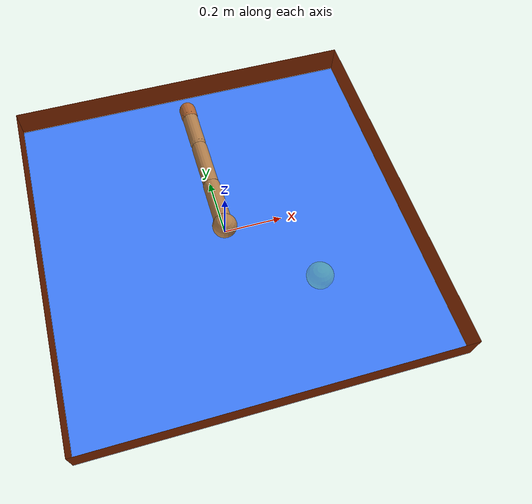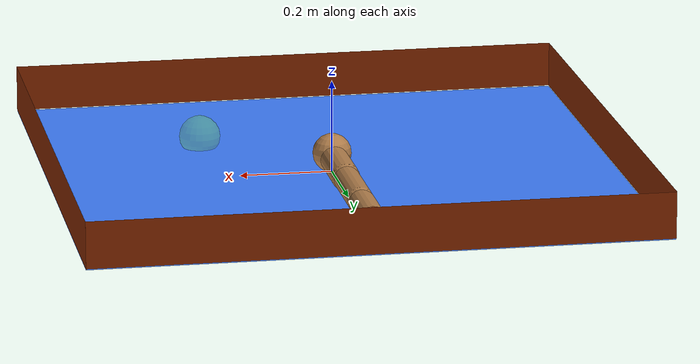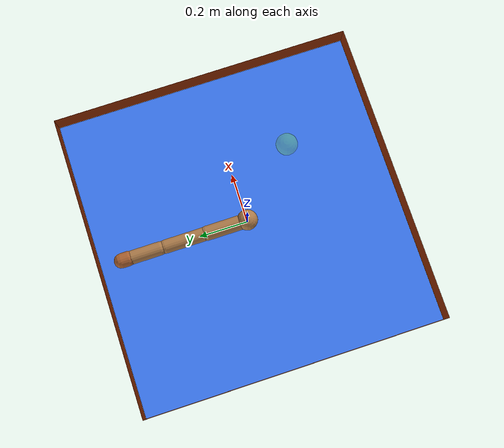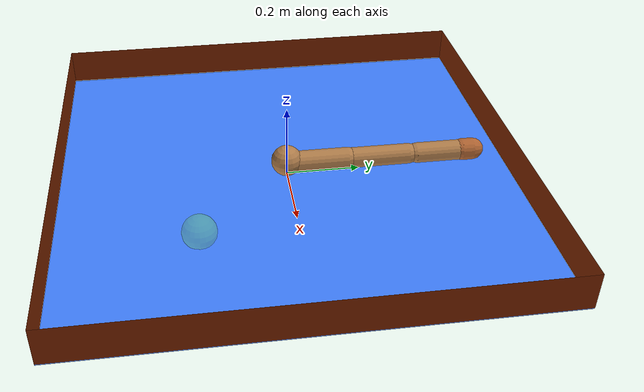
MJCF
<mujoco model="planar point mass">
    <visual>
        <quality shadowsize="2048" />
        <headlight ambient="0.4 0.4 0.4" diffuse="0.8 0.8 0.8" specular="0.1 0.1 0.1" />
    </visual>

  <!--  Time step is very important any number above 0.008 leads to unstable results original time step is 0.0001 -->
  <option impratio="10" iterations="1" ls_iterations="4" timestep="0.005">
    <flag eulerdamp="disable"/>
  </option>

    <asset>
        <texture type="skybox" name="skybox" builtin="gradient" mark="random" rgb1="0.4 0.6 0.8" rgb2="0 0 0" markrgb="1 1 1" width="800" height="4800" />
        <texture type="2d" name="grid" builtin="checker" mark="edge" rgb1="0.1 0.2 0.3" rgb2="0.2 0.3 0.4" markrgb="0.2 0.3 0.4" width="300" height="300" />
        <material name="grid" texture="grid" texuniform="true" reflectance="0.2" />
        <material name="self" rgba="0.7 0.5 0.3 1" />
        <material name="self_default" rgba="0.7 0.5 0.3 1" />
        <material name="self_highlight" rgba="0 0.5 0.3 1" />
        <material name="effector" rgba="0.7 0.4 0.2 1" />
        <material name="effector_default" rgba="0.7 0.4 0.2 1" />
        <material name="effector_highlight" rgba="0 0.5 0.3 1" />
        <material name="decoration" rgba="0.3 0.5 0.7 1" />
        <material name="eye" rgba="0 0.2 1 1" />
        <material name="target" rgba="0.6 0.3 0.3 1" />
        <material name="target_default" rgba="0.6 0.3 0.3 1" />
        <material name="target_highlight" rgba="0.6 0.3 0.3 0.4" />
    </asset>

    <option timestep="0.01"> </option>

    <worldbody>
        <geom name="ground" size="0.61 0.61 0.1" pos="-0.0 0 0.0" type="plane" rgba="0.25 0.5 1 1"/>
        <geom name="wall_x" size="0.05 0.61 0.02" pos="-0.61 0 0.05" quat="0.707107 0 0.707107 0" type="plane" rgba="0.5 0.15 0 1"/>
        <geom name="wall_y" size="0.61 0.05 0.02" pos="0 -0.61 0.05" quat="0.707107 -0.707107 0 0" type="plane" rgba="0.5 0.15 0 1"/>
        <geom name="wall_neg_x" size="0.05 0.61 0.02" pos="0.61 0 0.05" quat="0.707107 0 -0.707107 0" type="plane" rgba="0.5 0.15 0 1"/>
        <geom name="wall_neg_y" size="0.61 0.05 0.02" pos="0 0.61 0.05" quat="0.707107 0.707107 0 0" type="plane" rgba="0.5 0.15 0 1"/>
        <camera name="fixed" pos="0 0 0.75" />
        <light name="light" pos="0 0 1" dir="0 0 -1" />

        <body name ="finger" pos="0 0 0.035" quat="0.707107 0.707107 0 0">
            <joint name="proximal" range="0 6.28318530718" axis="0 -1 0" damping="0.05" limited="false" />
            <geom name="proximal" type="capsule" material="self" size=".03" fromto="0 0 0 0 0 -.17" contype="0" conaffinity="0"/>
            <body name="distal" pos="0 0 -.18">
                <joint name="distal"  range="0 6.28318530718" axis="0 -1 0" damping="0.05" limited="false"/>
                <geom name="distal" type="capsule" size=".028" material="self" fromto="0 0 0 0 0 -.16" contype="0" conaffinity="0"/>
                <body name="distal2" pos="0 0 -.18">
                    <joint name="distal2" range="0 6.28318530718" axis="0 -1 0" damping="0.05" limited="false"/>
                    <geom name="distal2" type="capsule" size=".028" material="self" fromto="0 0 0 0 0 -.16" contype="0" conaffinity="0"/>
                    <geom name="fingertip2" type="capsule" size=".03" material="effector" fromto="0 0 -.13 0 0 -.161"/>
                    <site name="touchtop2" pos=".01 0 -.17"/>
                    <site name="touchbottom2" pos="-.01 0 -.17"/>
                </body>
            </body>
        </body>

        <body name="pointmass" pos="-.0 .0 .042">
            <camera name="cam0" pos="0 -0.3 0.3" xyaxes="1 0 0 0 0.7 0.7"/>
            <joint name="root_x" type="slide"  pos="0 0 0" axis="1 0 0" damping="3" frictionloss=".01"/>
            <joint name="root_y" type="slide"  pos="0 0 0" axis="0 1 0" damping="3" frictionloss=".01"/>
            <geom name="pointmass" type="sphere" size=".042" material="self" mass=".6" condim="3"  group="2" solimp="0.05 0.7 0.001" solref="0.02 1" contype="0" conaffinity="0"/>
        </body>

        <geom name="target" pos="0.25 -0.25 0.022" material="target" type="sphere" rgba="0.5 1 0 0.25"  size=".045" contype="0" conaffinity="0"/>
    </worldbody>

    <tendon>
        <fixed name="t1">
            <joint joint="root_x" coef="1"/>
            <joint joint="root_y" coef="0"/>
        </fixed>
        <fixed name="t2">
            <joint joint="root_x" coef="0"/>
            <joint joint="root_y" coef="1"/>
        </fixed>
    </tendon>

    <actuator>
        <general name="proximal" joint="proximal" gear="0.5 0 0 0 0 0" />
        <general name="distal" joint="distal" gear="0.625 0 0 0 0 0" />
        <general name="distal2" joint="distal2" gear="0.75 0 0 0 0 0" />
    </actuator>

    <sensor>
        <framepos name="proximal_frame" objtype="body" objname="pointmass"/>
    </sensor>

    <contact>
        <exclude body1="pointmass" body2="world"/>
        <exclude body1="distal" body2="world"/>
        <exclude body1="distal2" body2="world"/>
        <exclude body1="finger" body2="world"/>
    </contact>

</mujoco>
